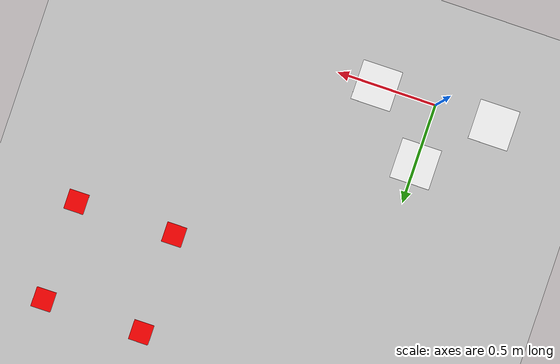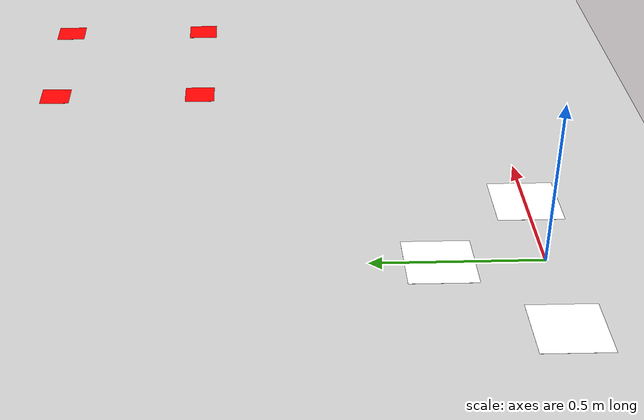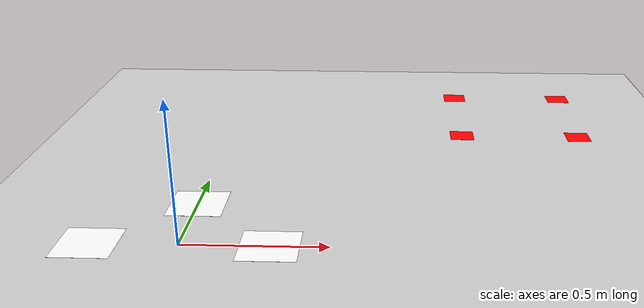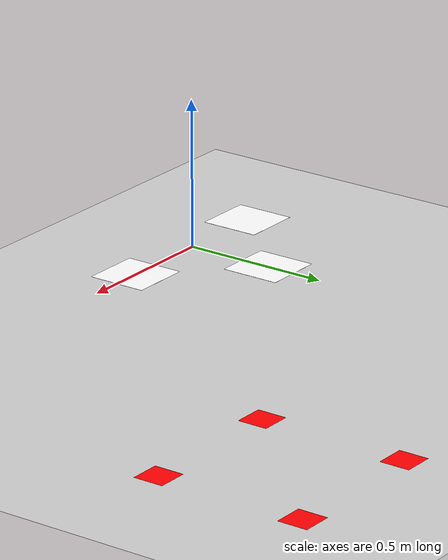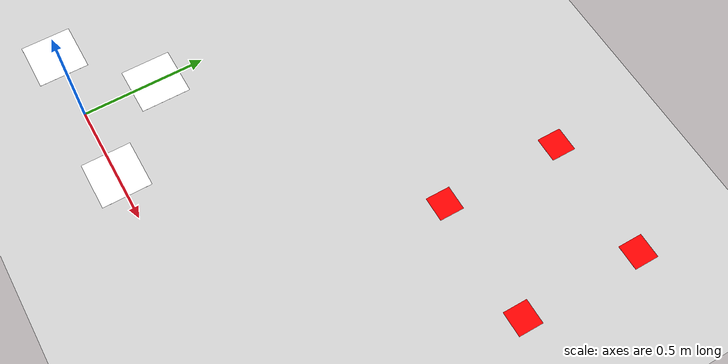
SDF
<?xml version="1.0" encoding="UTF-8"?>
<sdf version="1.9">
  <world name="agriwing">
    <physics type="ode">
      <max_step_size>0.004</max_step_size>
      <real_time_factor>1.0</real_time_factor>
      <real_time_update_rate>250</real_time_update_rate>
    </physics>
    <gravity>0 0 -9.8</gravity>
    <magnetic_field>6e-06 2.3e-05 -4.2e-05</magnetic_field>
    <atmosphere type="adiabatic"/>
    <scene>
      <grid>false</grid>
      <ambient>0.4 0.4 0.4 1</ambient>
      <background>0.7 0.7 0.7 1</background>
      <shadows>true</shadows>
    </scene>
    <model name="ground_plane">
      <static>true</static>
      <link name="link">
        <collision name="collision">
          <geometry>
            <plane>
              <normal>0 0 1</normal>
              <size>1 1</size>
            </plane>
          </geometry>
          <surface>
            <friction>
              <ode/>
            </friction>
            <bounce/>
            <contact/>
          </surface>
        </collision>
        <visual name="visual">
          <geometry>
            <plane>
              <normal>0 0 1</normal>
              <size>100 100</size>
            </plane>
          </geometry>
          <material>
            <ambient>0.8 0.8 0.8 1</ambient>
            <diffuse>0.8 0.8 0.8 1</diffuse>
            <specular>0.8 0.8 0.8 1</specular>
          </material>
        </visual>
        <pose>0 0 0 0 -0 0</pose>
        <inertial>
          <pose>0 0 0 0 -0 0</pose>
          <mass>1</mass>
          <inertia>
            <ixx>1</ixx>
            <ixy>0</ixy>
            <ixz>0</ixz>
            <iyy>1</iyy>
            <iyz>0</iyz>
            <izz>1</izz>
          </inertia>
        </inertial>
        <enable_wind>false</enable_wind>
      </link>
      <pose>0 0 0 0 -0 0</pose>
      <self_collide>false</self_collide>
    </model>
    <light name="sunUTC" type="directional">
      <pose>0 0 500 0 -0 0</pose>
      <cast_shadows>true</cast_shadows>
      <intensity>1</intensity>
      <direction>0.001 0.625 -0.78</direction>
      <diffuse>0.904 0.904 0.904 1</diffuse>
      <specular>0.271 0.271 0.271 1</specular>
      <attenuation>
        <range>2000</range>
        <linear>0</linear>
        <constant>1</constant>
        <quadratic>0</quadratic>
      </attenuation>
      <spot>
        <inner_angle>0</inner_angle>
        <outer_angle>0</outer_angle>
        <falloff>0</falloff>
      </spot>
    </light>
    <spherical_coordinates>
      <surface_model>EARTH_WGS84</surface_model>
      <world_frame_orientation>ENU</world_frame_orientation>
      <latitude_deg>47.397971057728974</latitude_deg>
      <longitude_deg> 8.546163739800146</longitude_deg>
      <elevation>0</elevation>
    </spherical_coordinates>

    <!-- Agriwing Docking Base simplify to 3 aruco markers -->
    <include>
      <uri>model://agriwing/docking_base</uri>
    </include>

    <!-- Agriwing red squares for crop_detector testing -->
    <include>
      <uri>model://agriwing/red_squares</uri>
    </include>
  </world>
</sdf>

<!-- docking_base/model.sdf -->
<sdf version='1.9'>
  <model name='docking_base'>
    <static>true</static>
    <pose>0 0 0.001 0 0 0</pose>
    <link name='marker_1'>
      <pose>0.3 0 0.001 0 0 0</pose>
      <visual name='base_visual'>
        <geometry>
          <plane>
            <normal>0 0 1</normal>
            <size>0.2 0.2</size>
          </plane>
        </geometry>
        <material>
          <diffuse>1 1 1 1</diffuse>
          <specular>0.4 0.4 0.4 1</specular>
          <pbr>
            <metal>
              <albedo_map>model://agriwing/docking_base/aruco1.png</albedo_map>
            </metal>
          </pbr>
        </material>
      </visual>
    </link>
    <link name='marker_2'>
      <pose>0 0.3 0.001 0 0 0</pose>
      <visual name='base_visual'>
        <geometry>
          <plane>
            <normal>0 0 1</normal>
            <size>0.2 0.2</size>
          </plane>
        </geometry>
        <material>
          <diffuse>1 1 1 1</diffuse>
          <specular>0.4 0.4 0.4 1</specular>
          <pbr>
            <metal>
              <albedo_map>model://agriwing/docking_base/aruco2.png</albedo_map>
            </metal>
          </pbr>
        </material>
      </visual>
    </link>
    <link name='marker_3'>
      <pose>-0.3 0 0.001 0 0 0</pose>
      <visual name='base_visual'>
        <geometry>
          <plane>
            <normal>0 0 1</normal>
            <size>0.2 0.2</size>
          </plane>
        </geometry>
        <material>
          <diffuse>1 1 1 1</diffuse>
          <specular>0.4 0.4 0.4 1</specular>
          <pbr>
            <metal>
              <albedo_map>model://agriwing/docking_base/aruco3.png</albedo_map>
            </metal>
          </pbr>
        </material>
      </visual>
    </link>
  </model>
</sdf>

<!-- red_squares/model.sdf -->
<sdf version='1.9'>
  <model name='red_squares'>
    <static>true</static>
    <pose>0 0 0.001 0 0 0</pose>
    <link name='red_square0'>
      <pose>1.0 1.0 0.001 0 0 0</pose>
      <visual name='base_visual'>
        <geometry>
          <plane>
            <normal>0 0 1</normal>
            <size>0.1 0.1</size>
          </plane>
        </geometry>
        <material>
          <diffuse>1 0 0 1</diffuse>
          <specular>0.4 0.4 0.4 1</specular>
        </material>
      </visual>
    </link>
    <link name='red_square1'>
      <pose>1.5 1.5 0.001 0 0 0</pose>
      <visual name='base_visual'>
        <geometry>
          <plane>
            <normal>0 0 1</normal>
            <size>0.1 0.1</size>
          </plane>
        </geometry>
        <material>
          <diffuse>1 0 0 1</diffuse>
          <specular>0.4 0.4 0.4 1</specular>
        </material>
      </visual>
    </link>
    <link name='red_square2'>
      <pose>1.0 1.5 0.001 0 0 0</pose>
      <visual name='base_visual'>
        <geometry>
          <plane>
            <normal>0 0 1</normal>
            <size>0.1 0.1</size>
          </plane>
        </geometry>
        <material>
          <diffuse>1 0 0 1</diffuse>
          <specular>0.4 0.4 0.4 1</specular>
        </material>
      </visual>
    </link>
    <link name='red_square3'>
      <pose>1.5 1.0 0.001 0 0 0</pose>
      <visual name='base_visual'>
        <geometry>
          <plane>
            <normal>0 0 1</normal>
            <size>0.1 0.1</size>
          </plane>
        </geometry>
        <material>
          <diffuse>1 0 0 1</diffuse>
          <specular>0.4 0.4 0.4 1</specular>
        </material>
      </visual>
    </link>
  </model>
</sdf>
